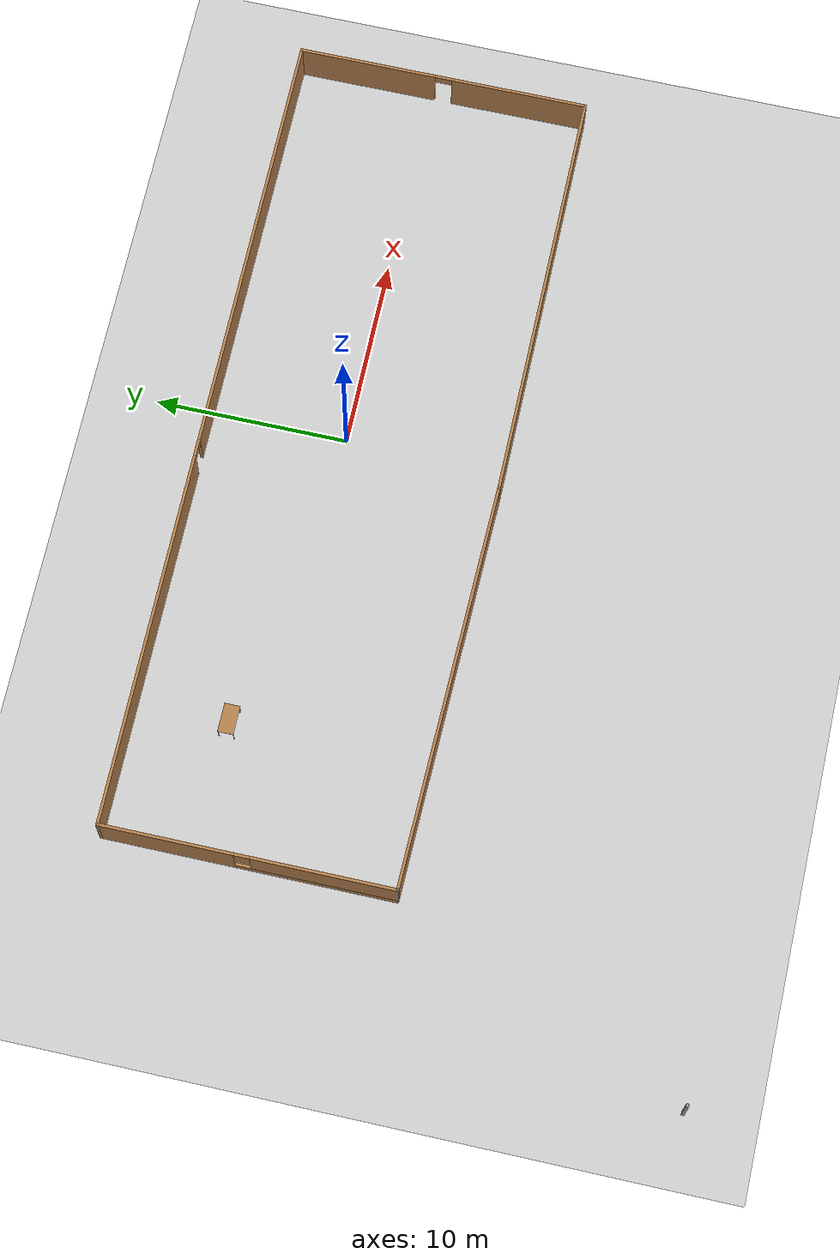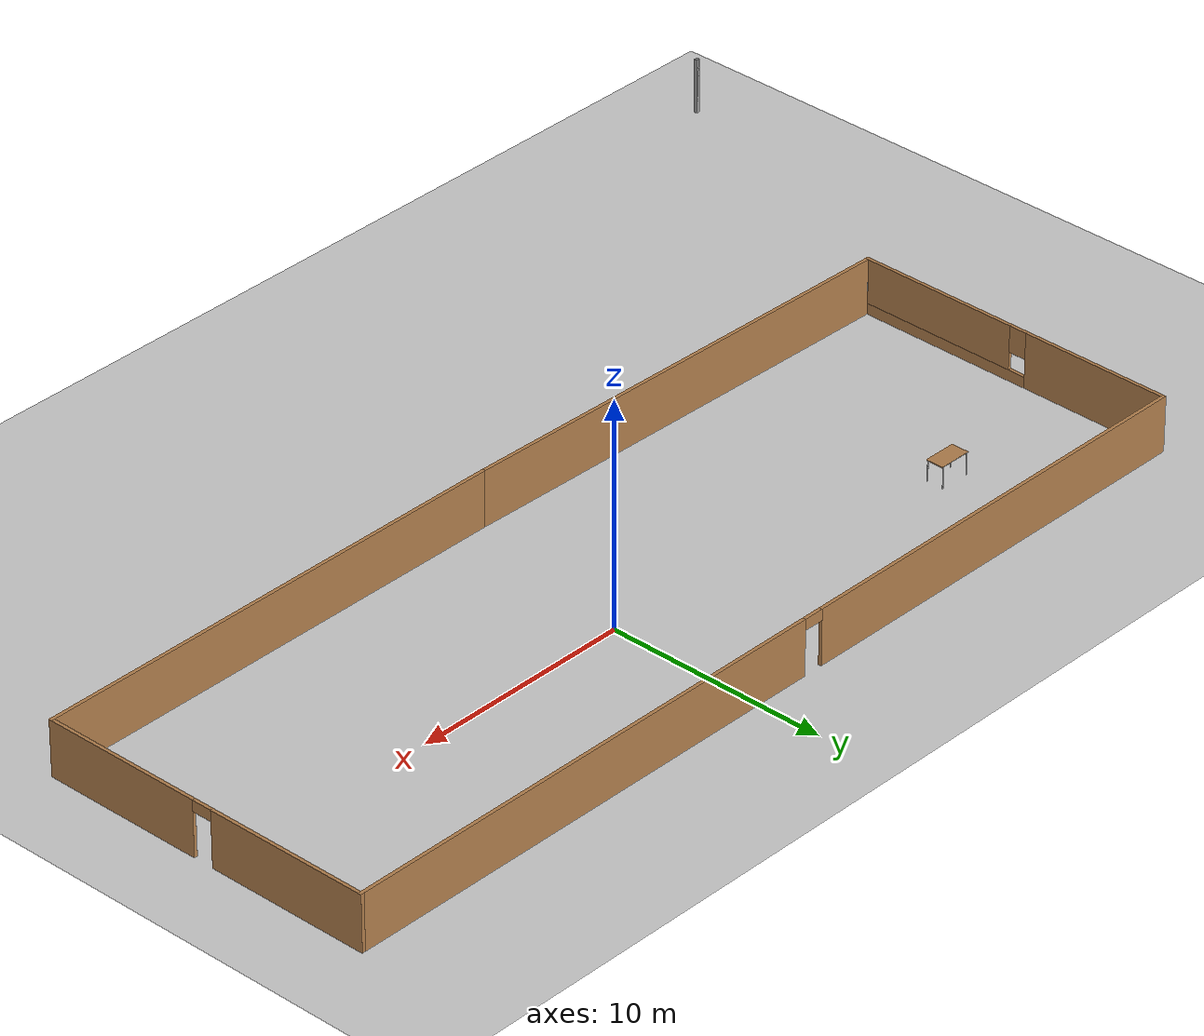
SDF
<sdf version="1.7">
 <world name="default">
  <light name="sun" type="directional">
   <pose>0 0 10 0 -0 0</pose>
   <diffuse>0.8 0.8 0.8 1</diffuse>
   <specular>0.2 0.2 0.2 1</specular>
   <attenuation>
    <range>1000</range>
    <constant>0.9</constant>
    <linear>0.01</linear>
    <quadratic>0.001</quadratic>
   </attenuation>
   <direction>-0.5 0.1 -0.9</direction>
   <spot><inner_angle>0</inner_angle><outer_angle>0</outer_angle><falloff>0</falloff></spot>
  </light>
  <model name="ground_plane">
   <static>1</static>
   <link name="link">
    <collision name="collision">
     <geometry><plane><normal>0 0 1</normal><size>100 100</size></plane></geometry>
     <surface>
      <contact><collide_bitmask>65535</collide_bitmask></contact>
      <friction><ode><mu>100</mu><mu2>50</mu2></ode></friction>
     </surface>
    </collision>
    <visual name="visual">
     <cast_shadows>0</cast_shadows>
     <geometry><plane><normal>0 0 1</normal><size>100 100</size></plane></geometry>
     <material>
      <script><uri>file://media/materials/scripts/gazebo.material</uri><name>Gazebo/Grey</name></script>
     </material>
    </visual>
   </link>
  </model>
  <gravity>0 0 -9.8</gravity>
  <magnetic_field>6e-06 2.3e-05 -4.2e-05</magnetic_field>
  <atmosphere type="adiabatic"/>
  <physics type="ode">
   <max_step_size>0.001</max_step_size>
   <real_time_factor>1</real_time_factor>
   <real_time_update_rate>1000</real_time_update_rate>
  </physics>
  <scene><ambient>0.4 0.4 0.4 1</ambient><background>0.7 0.7 0.7 1</background><shadows>1</shadows></scene>
  <audio><device>default</device></audio>
  <spherical_coordinates>
   <surface_model>EARTH_WGS84</surface_model>
   <latitude_deg>0</latitude_deg>
   <longitude_deg>0</longitude_deg>
   <elevation>0</elevation>
   <heading_deg>0</heading_deg>
  </spherical_coordinates>
  <model name="test2">
   <pose>-4.83987 -8.11397 0 0 -0 0</pose>
   <link name="Wall_1">
    <collision name="Wall_1_Collision">
     <geometry><box><size>0.16 0.15 2.5</size></box></geometry>
     <pose>0 0 1.25 0 -0 0</pose>
    </collision>
    <visual name="Wall_1_Visual">
     <pose>0 0 1.25 0 -0 0</pose>
     <geometry><box><size>0.16 0.15 2.5</size></box></geometry>
     <material>
      <script><uri>file://media/materials/scripts/gazebo.material</uri><name>Gazebo/Grey</name></script>
      <ambient>1 1 1 1</ambient>
     </material>
     <meta><layer>0</layer></meta>
    </visual>
    <pose>-25.2097 -15.1547 0 0 -0 0</pose>
   </link>
   <link name="Wall_2">
    <collision name="Wall_2_Collision">
     <geometry><box><size>0.16 0.15 2.5</size></box></geometry>
     <pose>0 0 1.25 0 -0 0</pose>
    </collision>
    <visual name="Wall_2_Visual">
     <pose>0 0 1.25 0 -0 0</pose>
     <geometry><box><size>0.16 0.15 2.5</size></box></geometry>
     <material>
      <script><uri>file://media/materials/scripts/gazebo.material</uri><name>Gazebo/Grey</name></script>
      <ambient>1 1 1 1</ambient>
     </material>
     <meta><layer>0</layer></meta>
    </visual>
    <pose>-25.1997 -15.1547 0 0 -0 0</pose>
   </link>
   <link name="Wall_4">
    <collision name="Wall_4_Collision">
     <geometry><box><size>22.25 0.15 2.5</size></box></geometry>
     <pose>0 0 1.25 0 -0 0</pose>
    </collision>
    <visual name="Wall_4_Visual">
     <pose>0 0 1.25 0 -0 0</pose>
     <geometry><box><size>22.25 0.15 2.5</size></box></geometry>
     <material>
      <script><uri>file://media/materials/scripts/gazebo.material</uri><name>Gazebo/Wood</name></script>
      <ambient>1 1 1 1</ambient>
     </material>
     <meta><layer>0</layer></meta>
    </visual>
    <pose>14.1647 -0.195324 0 0 -0 0</pose>
   </link>
   <link name="Wall_5">
    <pose>25.2147 7.47968 0 0 -0 1.5708</pose>
    <visual name="Wall_5_Visual_0">
     <pose>-4.12362 0 1.25 0 -0 0</pose>
     <geometry><box><size>7.25276 0.15 2.5</size></box></geometry>
     <material>
      <script><uri>file://media/materials/scripts/gazebo.material</uri><name>Gazebo/Wood</name></script>
      <ambient>1 1 1 1</ambient>
     </material>
     <meta><layer>0</layer></meta>
    </visual>
    <collision name="Wall_5_Collision_0">
     <geometry><box><size>7.25276 0.15 2.5</size></box></geometry>
     <pose>-4.12362 0 1.25 0 -0 0</pose>
    </collision>
    <visual name="Wall_5_Visual_1">
     <pose>4.07638 0 1.25 0 -0 0</pose>
     <geometry><box><size>7.34724 0.15 2.5</size></box></geometry>
     <material>
      <script><uri>file://media/materials/scripts/gazebo.material</uri><name>Gazebo/Wood</name></script>
      <ambient>1 1 1 1</ambient>
     </material>
     <meta><layer>0</layer></meta>
    </visual>
    <collision name="Wall_5_Collision_1">
     <geometry><box><size>7.34724 0.15 2.5</size></box></geometry>
     <pose>4.07638 0 1.25 0 -0 0</pose>
    </collision>
    <visual name="Wall_5_Visual_2">
     <pose>-0.047242 0 2.25 0 -0 0</pose>
     <geometry><box><size>0.9 0.15 0.5</size></box></geometry>
     <material>
      <script><uri>file://media/materials/scripts/gazebo.material</uri><name>Gazebo/Wood</name></script>
      <ambient>1 1 1 1</ambient>
     </material>
     <meta><layer>0</layer></meta>
    </visual>
    <collision name="Wall_5_Collision_2">
     <geometry><box><size>0.9 0.15 0.5</size></box></geometry>
     <pose>-0.047242 0 2.25 0 -0 0</pose>
    </collision>
   </link>
   <link name="Wall_6">
    <pose>3.53966 15.1547 0 0 -0 3.14159</pose>
    <visual name="Wall_6_Visual_0">
     <pose>-10.2827 0 1.25 0 -0 0</pose>
     <geometry><box><size>22.9346 0.15 2.5</size></box></geometry>
     <material>
      <script><uri>file://media/materials/scripts/gazebo.material</uri><name>Gazebo/Wood</name></script>
      <ambient>1 1 1 1</ambient>
     </material>
     <meta><layer>0</layer></meta>
    </visual>
    <collision name="Wall_6_Collision_0">
     <geometry><box><size>22.9346 0.15 2.5</size></box></geometry>
     <pose>-10.2827 0 1.25 0 -0 0</pose>
    </collision>
    <visual name="Wall_6_Visual_1">
     <pose>11.9173 0 1.25 0 -0 0</pose>
     <geometry><box><size>19.6654 0.15 2.5</size></box></geometry>
     <material>
      <script><uri>file://media/materials/scripts/gazebo.material</uri><name>Gazebo/Wood</name></script>
      <ambient>1 1 1 1</ambient>
     </material>
     <meta><layer>0</layer></meta>
    </visual>
    <collision name="Wall_6_Collision_1">
     <geometry><box><size>19.6654 0.15 2.5</size></box></geometry>
     <pose>11.9173 0 1.25 0 -0 0</pose>
    </collision>
    <visual name="Wall_6_Visual_2">
     <pose>1.63462 0 2.25 0 -0 0</pose>
     <geometry><box><size>0.9 0.15 0.5</size></box></geometry>
     <material>
      <script><uri>file://media/materials/scripts/gazebo.material</uri><name>Gazebo/Wood</name></script>
      <ambient>1 1 1 1</ambient>
     </material>
     <meta><layer>0</layer></meta>
    </visual>
    <collision name="Wall_6_Collision_2">
     <geometry><box><size>0.9 0.15 0.5</size></box></geometry>
     <pose>1.63462 0 2.25 0 -0 0</pose>
    </collision>
   </link>
   <link name="Wall_7">
    <pose>-18.1353 7.72968 0 0 -0 -1.5708</pose>
    <visual name="Wall_7_Visual_0">
     <pose>-4.08457 0 1.25 0 -0 0</pose>
     <geometry><box><size>6.83086 0.15 2.5</size></box></geometry>
     <material>
      <script><uri>file://media/materials/scripts/gazebo.material</uri><name>Gazebo/Wood</name></script>
      <ambient>1 1 1 1</ambient>
     </material>
     <meta><layer>0</layer></meta>
    </visual>
    <collision name="Wall_7_Collision_0">
     <geometry><box><size>6.83086 0.15 2.5</size></box></geometry>
     <pose>-4.08457 0 1.25 0 -0 0</pose>
    </collision>
    <visual name="Wall_7_Visual_1">
     <pose>3.41543 0 0.25 0 -0 0</pose>
     <geometry><box><size>8.16914 0.15 0.5</size></box></geometry>
     <material>
      <script><uri>file://media/materials/scripts/gazebo.material</uri><name>Gazebo/Wood</name></script>
      <ambient>1 1 1 1</ambient>
     </material>
     <meta><layer>0</layer></meta>
    </visual>
    <collision name="Wall_7_Collision_1">
     <geometry><box><size>8.16914 0.15 0.5</size></box></geometry>
     <pose>3.41543 0 0.25 0 -0 0</pose>
    </collision>
    <visual name="Wall_7_Visual_2">
     <pose>3.81543 0 1.5 0 -0 0</pose>
     <geometry><box><size>7.36914 0.15 2</size></box></geometry>
     <material>
      <script><uri>file://media/materials/scripts/gazebo.material</uri><name>Gazebo/Wood</name></script>
      <ambient>1 1 1 1</ambient>
     </material>
     <meta><layer>0</layer></meta>
    </visual>
    <collision name="Wall_7_Collision_2">
     <geometry><box><size>7.36914 0.15 2</size></box></geometry>
     <pose>3.81543 0 1.5 0 -0 0</pose>
    </collision>
    <visual name="Wall_7_Visual_3">
     <pose>-0.269136 0 1.9 0 -0 0</pose>
     <geometry><box><size>0.8 0.15 1.2</size></box></geometry>
     <material>
      <script><uri>file://media/materials/scripts/gazebo.material</uri><name>Gazebo/Wood</name></script>
      <ambient>1 1 1 1</ambient>
     </material>
     <meta><layer>0</layer></meta>
    </visual>
    <collision name="Wall_7_Collision_3">
     <geometry><box><size>0.8 0.15 1.2</size></box></geometry>
     <pose>-0.269136 0 1.9 0 -0 0</pose>
    </collision>
   </link>
   <link name="Wall_8">
    <collision name="Wall_8_Collision">
     <geometry><box><size>0.16 0.15 2.5</size></box></geometry>
     <pose>0 0 1.25 0 -0 0</pose>
    </collision>
    <visual name="Wall_8_Visual">
     <pose>0 0 1.25 0 -0 0</pose>
     <geometry><box><size>0.16 0.15 2.5</size></box></geometry>
     <material>
      <script><uri>file://media/materials/scripts/gazebo.material</uri><name>Gazebo/Grey</name></script>
      <ambient>1 1 1 1</ambient>
     </material>
     <meta><layer>0</layer></meta>
    </visual>
    <pose>-18.1303 0.304676 0 0 -0 0</pose>
   </link>
   <link name="Wall_9">
    <collision name="Wall_9_Collision">
     <geometry><box><size>21.3959 0.15 2.5</size></box></geometry>
     <pose>0 0 1.25 0 -0 0</pose>
    </collision>
    <visual name="Wall_9_Visual">
     <pose>0 0 1.25 0 -0 0</pose>
     <geometry><box><size>21.3959 0.15 2.5</size></box></geometry>
     <material>
      <script><uri>file://media/materials/scripts/gazebo.material</uri><name>Gazebo/Wood</name></script>
      <ambient>1 1 1 1</ambient>
     </material>
     <meta><layer>0</layer></meta>
    </visual>
    <pose>-7.50533 0.054676 0 0 -0 -0.023536</pose>
   </link>
   <static>1</static>
  </model>
  <model name="table">
   <static>1</static>
   <link name="link">
    <collision name="surface">
     <pose>0 0 1 0 -0 0</pose>
     <geometry><box><size>1.5 0.8 0.03</size></box></geometry>
     <surface><friction><ode><mu>0.6</mu><mu2>0.6</mu2></ode></friction></surface>
    </collision>
    <visual name="visual1">
     <pose>0 0 1 0 -0 0</pose>
     <geometry><box><size>1.5 0.8 0.03</size></box></geometry>
     <material>
      <script><uri>file://media/materials/scripts/gazebo.material</uri><name>Gazebo/Wood</name></script>
     </material>
    </visual>
    <collision name="front_left_leg">
     <pose>0.68 0.38 0.5 0 -0 0</pose>
     <geometry><cylinder><radius>0.02</radius><length>1</length></cylinder></geometry>
    </collision>
    <visual name="front_left_leg">
     <pose>0.68 0.38 0.5 0 -0 0</pose>
     <geometry><cylinder><radius>0.02</radius><length>1</length></cylinder></geometry>
     <material>
      <script><uri>file://media/materials/scripts/gazebo.material</uri><name>Gazebo/Grey</name></script>
     </material>
    </visual>
    <collision name="front_right_leg">
     <pose>0.68 -0.38 0.5 0 -0 0</pose>
     <geometry><cylinder><radius>0.02</radius><length>1</length></cylinder></geometry>
    </collision>
    <visual name="front_right_leg">
     <pose>0.68 -0.38 0.5 0 -0 0</pose>
     <geometry><cylinder><radius>0.02</radius><length>1</length></cylinder></geometry>
     <material>
      <script><uri>file://media/materials/scripts/gazebo.material</uri><name>Gazebo/Grey</name></script>
     </material>
    </visual>
    <collision name="back_right_leg">
     <pose>-0.68 -0.38 0.5 0 -0 0</pose>
     <geometry><cylinder><radius>0.02</radius><length>1</length></cylinder></geometry>
    </collision>
    <visual name="back_right_leg">
     <pose>-0.68 -0.38 0.5 0 -0 0</pose>
     <geometry><cylinder><radius>0.02</radius><length>1</length></cylinder></geometry>
     <material>
      <script><uri>file://media/materials/scripts/gazebo.material</uri><name>Gazebo/Grey</name></script>
     </material>
    </visual>
    <collision name="back_left_leg">
     <pose>-0.68 0.38 0.5 0 -0 0</pose>
     <geometry><cylinder><radius>0.02</radius><length>1</length></cylinder></geometry>
    </collision>
    <visual name="back_left_leg">
     <pose>-0.68 0.38 0.5 0 -0 0</pose>
     <geometry><cylinder><radius>0.02</radius><length>1</length></cylinder></geometry>
     <material>
      <script><uri>file://media/materials/scripts/gazebo.material</uri><name>Gazebo/Grey</name></script>
     </material>
    </visual>
   </link>
   <pose>-16.0352 2.26802 0 0 -0 0</pose>
  </model>
 </world>
</sdf>
